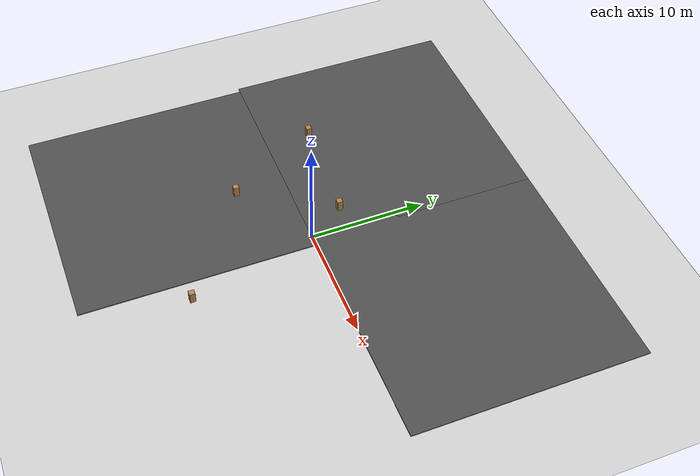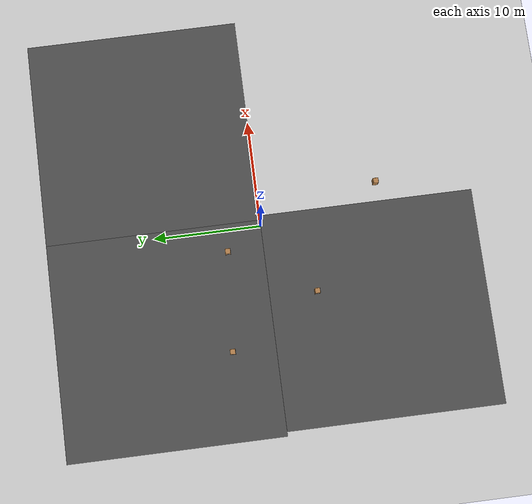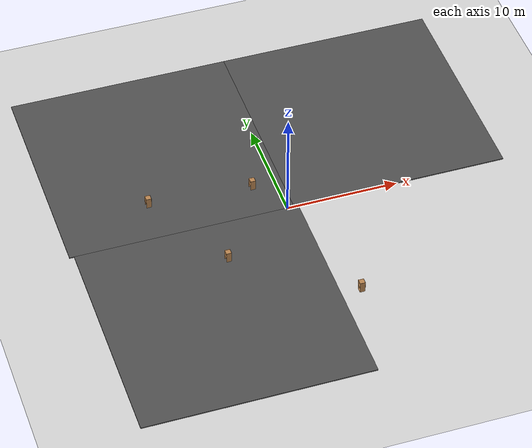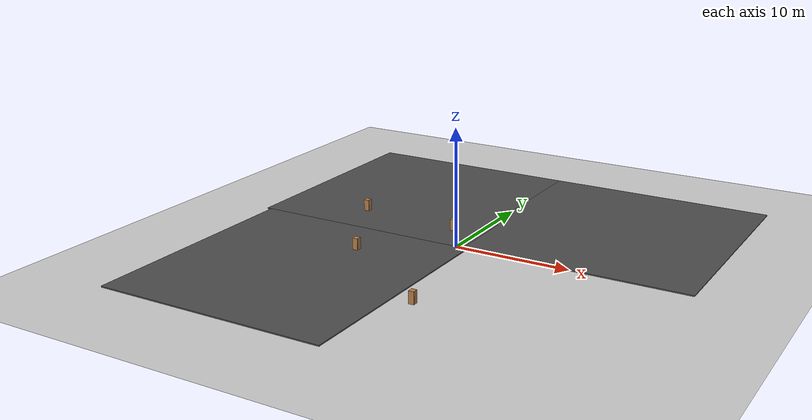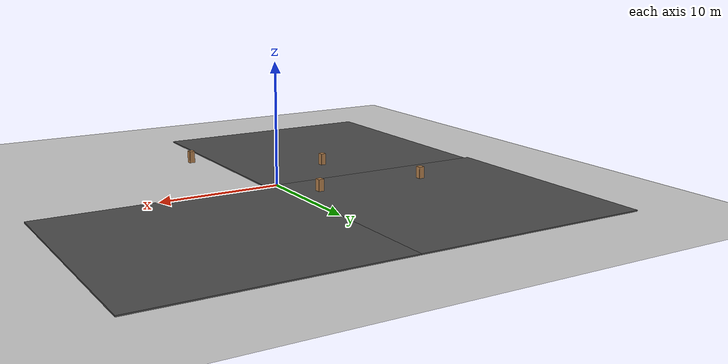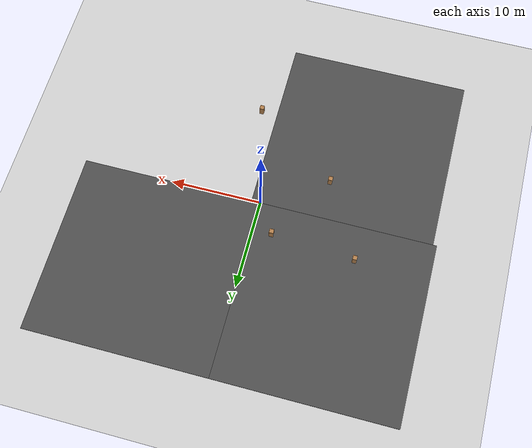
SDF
<sdf version="1.7">
 <world name="default">
  <model name="ground_plane">
   <static>1</static>
   <link name="link">
    <collision name="collision">
     <geometry><plane><normal>0 0 1</normal><size>100 100</size></plane></geometry>
     <surface>
      <contact><collide_bitmask>65535</collide_bitmask></contact>
      <friction><ode><mu>100</mu><mu2>50</mu2></ode></friction>
     </surface>
    </collision>
    <visual name="visual">
     <cast_shadows>0</cast_shadows>
     <geometry><plane><normal>0 0 1</normal><size>100 100</size></plane></geometry>
     <material>
      <script><uri>file://media/materials/scripts/gazebo.material</uri><name>Gazebo/Grey</name></script>
     </material>
    </visual>
   </link>
  </model>
  <model name="asphalt_plane">
   <static>1</static>
   <link name="link">
    <collision name="collision"><geometry><box><size>20 20 0.1</size></box></geometry></collision>
    <visual name="visual">
     <cast_shadows>0</cast_shadows>
     <geometry><box><size>20 20 0.1</size></box></geometry>
     <material>
      <script>
       <uri>model://asphalt_plane/materials/scripts</uri>
       <uri>model://asphalt_plane/materials/textures</uri>
       <name>vrc/asphalt</name>
      </script>
     </material>
    </visual>
   </link>
   <pose>10 10 0 0 -0 0</pose>
  </model>
  <model name="asphalt_plane_0">
   <static>1</static>
   <link name="link">
    <collision name="collision"><geometry><box><size>20 20 0.1</size></box></geometry></collision>
    <visual name="visual">
     <cast_shadows>0</cast_shadows>
     <geometry><box><size>20 20 0.1</size></box></geometry>
     <material>
      <script>
       <uri>model://asphalt_plane/materials/scripts</uri>
       <uri>model://asphalt_plane/materials/textures</uri>
       <name>vrc/asphalt</name>
      </script>
     </material>
    </visual>
   </link>
   <pose>-9.40687 10 0 0 -0 0</pose>
  </model>
  <model name="asphalt_plane_1_clone">
   <static>1</static>
   <link name="link">
    <collision name="collision"><geometry><box><size>20 20 0.1</size></box></geometry></collision>
    <visual name="visual">
     <cast_shadows>0</cast_shadows>
     <geometry><box><size>20 20 0.1</size></box></geometry>
     <material>
      <script>
       <uri>model://asphalt_plane/materials/scripts</uri>
       <uri>model://asphalt_plane/materials/textures</uri>
       <name>vrc/asphalt</name>
      </script>
     </material>
    </visual>
   </link>
   <pose>-9 -10 0 0 -0 0</pose>
  </model>
  <model name="cabinet_clone_1">
   <static>1</static>
   <link name="cabinet_bottom_plate">
    <inertial>
     <pose>0 0 -1 0 -0 0</pose>
     <inertia><ixx>2.05</ixx><ixy>0</ixy><ixz>0</ixz><iyy>2.05</iyy><iyz>0</iyz><izz>2.05</izz></inertia>
     <mass>25</mass>
    </inertial>
    <collision name="cabinet_bottom_plate_geom">
     <pose>0 0 0.01 0 -0 0</pose>
     <geometry><box><size>0.45 0.45 0.02</size></box></geometry>
    </collision>
    <visual name="cabinet_bottom_plate_geom_visual">
     <pose>0 0 0.01 0 -0 0</pose>
     <geometry><box><size>0.45 0.45 0.02</size></box></geometry>
     <material>
      <script><uri>file://media/materials/scripts/gazebo.material</uri><name>Gazebo/Wood</name></script>
     </material>
    </visual>
    <collision name="cabinet_bottom_plate_geom_cabinet_back_plate">
     <pose>0.235 0 0.51 0 -0 0</pose>
     <geometry><box><size>0.02 0.45 1.02</size></box></geometry>
    </collision>
    <visual name="cabinet_bottom_plate_geom_cabinet_back_plate_visual">
     <pose>0.235 0 0.51 0 -0 0</pose>
     <geometry><box><size>0.02 0.45 1.02</size></box></geometry>
     <material>
      <script><uri>file://media/materials/scripts/gazebo.material</uri><name>Gazebo/Wood</name></script>
     </material>
    </visual>
    <collision name="cabinet_bottom_plate_geom_cabinet_left_plate">
     <pose>0 0.235 0.51 0 -0 0</pose>
     <geometry><box><size>0.45 0.02 1.02</size></box></geometry>
    </collision>
    <visual name="cabinet_bottom_plate_geom_cabinet_left_plate_visual">
     <pose>0 0.235 0.51 0 -0 0</pose>
     <geometry><box><size>0.45 0.02 1.02</size></box></geometry>
     <material>
      <script><uri>file://media/materials/scripts/gazebo.material</uri><name>Gazebo/Wood</name></script>
     </material>
    </visual>
    <collision name="cabinet_bottom_plate_geom_cabinet_middle_plate">
     <pose>0 0 0.51 0 -0 0</pose>
     <geometry><box><size>0.45 0.45 0.02</size></box></geometry>
    </collision>
    <visual name="cabinet_bottom_plate_geom_cabinet_middle_plate_visual">
     <pose>0 0 0.51 0 -0 0</pose>
     <geometry><box><size>0.45 0.45 0.02</size></box></geometry>
     <material>
      <script><uri>file://media/materials/scripts/gazebo.material</uri><name>Gazebo/Wood</name></script>
     </material>
    </visual>
    <collision name="cabinet_bottom_plate_geom_cabinet_right_plate">
     <pose>0 -0.235 0.51 0 -0 0</pose>
     <geometry><box><size>0.45 0.02 1.02</size></box></geometry>
    </collision>
    <visual name="cabinet_bottom_plate_geom_cabinet_right_plate_visual">
     <pose>0 -0.235 0.51 0 -0 0</pose>
     <geometry><box><size>0.45 0.02 1.02</size></box></geometry>
     <material>
      <script><uri>file://media/materials/scripts/gazebo.material</uri><name>Gazebo/Wood</name></script>
     </material>
    </visual>
    <collision name="cabinet_bottom_plate_geom_cabinet_top_plate">
     <pose>0 0 1.01 0 -0 0</pose>
     <geometry><box><size>0.45 0.45 0.02</size></box></geometry>
    </collision>
    <visual name="cabinet_bottom_plate_geom_cabinet_top_plate_visual">
     <pose>0 0 1.01 0 -0 0</pose>
     <geometry><box><size>0.45 0.45 0.02</size></box></geometry>
     <material>
      <script><uri>file://media/materials/scripts/gazebo.material</uri><name>Gazebo/Wood</name></script>
     </material>
    </visual>
   </link>
   <pose>2.76242 -11.1397 0 0 -0 0</pose>
  </model>
  <model name="cabinet_clone_2">
   <static>1</static>
   <link name="cabinet_bottom_plate">
    <inertial>
     <pose>0 0 -1 0 -0 0</pose>
     <inertia><ixx>2.05</ixx><ixy>0</ixy><ixz>0</ixz><iyy>2.05</iyy><iyz>0</iyz><izz>2.05</izz></inertia>
     <mass>25</mass>
    </inertial>
    <collision name="cabinet_bottom_plate_geom">
     <pose>0 0 0.01 0 -0 0</pose>
     <geometry><box><size>0.45 0.45 0.02</size></box></geometry>
    </collision>
    <visual name="cabinet_bottom_plate_geom_visual">
     <pose>0 0 0.01 0 -0 0</pose>
     <geometry><box><size>0.45 0.45 0.02</size></box></geometry>
     <material>
      <script><uri>file://media/materials/scripts/gazebo.material</uri><name>Gazebo/Wood</name></script>
     </material>
    </visual>
    <collision name="cabinet_bottom_plate_geom_cabinet_back_plate">
     <pose>0.235 0 0.51 0 -0 0</pose>
     <geometry><box><size>0.02 0.45 1.02</size></box></geometry>
    </collision>
    <visual name="cabinet_bottom_plate_geom_cabinet_back_plate_visual">
     <pose>0.235 0 0.51 0 -0 0</pose>
     <geometry><box><size>0.02 0.45 1.02</size></box></geometry>
     <material>
      <script><uri>file://media/materials/scripts/gazebo.material</uri><name>Gazebo/Wood</name></script>
     </material>
    </visual>
    <collision name="cabinet_bottom_plate_geom_cabinet_left_plate">
     <pose>0 0.235 0.51 0 -0 0</pose>
     <geometry><box><size>0.45 0.02 1.02</size></box></geometry>
    </collision>
    <visual name="cabinet_bottom_plate_geom_cabinet_left_plate_visual">
     <pose>0 0.235 0.51 0 -0 0</pose>
     <geometry><box><size>0.45 0.02 1.02</size></box></geometry>
     <material>
      <script><uri>file://media/materials/scripts/gazebo.material</uri><name>Gazebo/Wood</name></script>
     </material>
    </visual>
    <collision name="cabinet_bottom_plate_geom_cabinet_middle_plate">
     <pose>0 0 0.51 0 -0 0</pose>
     <geometry><box><size>0.45 0.45 0.02</size></box></geometry>
    </collision>
    <visual name="cabinet_bottom_plate_geom_cabinet_middle_plate_visual">
     <pose>0 0 0.51 0 -0 0</pose>
     <geometry><box><size>0.45 0.45 0.02</size></box></geometry>
     <material>
      <script><uri>file://media/materials/scripts/gazebo.material</uri><name>Gazebo/Wood</name></script>
     </material>
    </visual>
    <collision name="cabinet_bottom_plate_geom_cabinet_right_plate">
     <pose>0 -0.235 0.51 0 -0 0</pose>
     <geometry><box><size>0.45 0.02 1.02</size></box></geometry>
    </collision>
    <visual name="cabinet_bottom_plate_geom_cabinet_right_plate_visual">
     <pose>0 -0.235 0.51 0 -0 0</pose>
     <geometry><box><size>0.45 0.02 1.02</size></box></geometry>
     <material>
      <script><uri>file://media/materials/scripts/gazebo.material</uri><name>Gazebo/Wood</name></script>
     </material>
    </visual>
    <collision name="cabinet_bottom_plate_geom_cabinet_top_plate">
     <pose>0 0 1.01 0 -0 0</pose>
     <geometry><box><size>0.45 0.45 0.02</size></box></geometry>
    </collision>
    <visual name="cabinet_bottom_plate_geom_cabinet_top_plate_visual">
     <pose>0 0 1.01 0 -0 0</pose>
     <geometry><box><size>0.45 0.45 0.02</size></box></geometry>
     <material>
      <script><uri>file://media/materials/scripts/gazebo.material</uri><name>Gazebo/Wood</name></script>
     </material>
    </visual>
   </link>
   <pose>-11.3 3.97723 0 0 -0 0</pose>
  </model>
  <model name="cabinet_clone_3">
   <static>1</static>
   <link name="cabinet_bottom_plate">
    <inertial>
     <pose>0 0 -1 0 -0 0</pose>
     <inertia><ixx>2.05</ixx><ixy>0</ixy><ixz>0</ixz><iyy>2.05</iyy><iyz>0</iyz><izz>2.05</izz></inertia>
     <mass>25</mass>
    </inertial>
    <collision name="cabinet_bottom_plate_geom">
     <pose>0 0 0.01 0 -0 0</pose>
     <geometry><box><size>0.45 0.45 0.02</size></box></geometry>
    </collision>
    <visual name="cabinet_bottom_plate_geom_visual">
     <pose>0 0 0.01 0 -0 0</pose>
     <geometry><box><size>0.45 0.45 0.02</size></box></geometry>
     <material>
      <script><uri>file://media/materials/scripts/gazebo.material</uri><name>Gazebo/Wood</name></script>
     </material>
    </visual>
    <collision name="cabinet_bottom_plate_geom_cabinet_back_plate">
     <pose>0.235 0 0.51 0 -0 0</pose>
     <geometry><box><size>0.02 0.45 1.02</size></box></geometry>
    </collision>
    <visual name="cabinet_bottom_plate_geom_cabinet_back_plate_visual">
     <pose>0.235 0 0.51 0 -0 0</pose>
     <geometry><box><size>0.02 0.45 1.02</size></box></geometry>
     <material>
      <script><uri>file://media/materials/scripts/gazebo.material</uri><name>Gazebo/Wood</name></script>
     </material>
    </visual>
    <collision name="cabinet_bottom_plate_geom_cabinet_left_plate">
     <pose>0 0.235 0.51 0 -0 0</pose>
     <geometry><box><size>0.45 0.02 1.02</size></box></geometry>
    </collision>
    <visual name="cabinet_bottom_plate_geom_cabinet_left_plate_visual">
     <pose>0 0.235 0.51 0 -0 0</pose>
     <geometry><box><size>0.45 0.02 1.02</size></box></geometry>
     <material>
      <script><uri>file://media/materials/scripts/gazebo.material</uri><name>Gazebo/Wood</name></script>
     </material>
    </visual>
    <collision name="cabinet_bottom_plate_geom_cabinet_middle_plate">
     <pose>0 0 0.51 0 -0 0</pose>
     <geometry><box><size>0.45 0.45 0.02</size></box></geometry>
    </collision>
    <visual name="cabinet_bottom_plate_geom_cabinet_middle_plate_visual">
     <pose>0 0 0.51 0 -0 0</pose>
     <geometry><box><size>0.45 0.45 0.02</size></box></geometry>
     <material>
      <script><uri>file://media/materials/scripts/gazebo.material</uri><name>Gazebo/Wood</name></script>
     </material>
    </visual>
    <collision name="cabinet_bottom_plate_geom_cabinet_right_plate">
     <pose>0 -0.235 0.51 0 -0 0</pose>
     <geometry><box><size>0.45 0.02 1.02</size></box></geometry>
    </collision>
    <visual name="cabinet_bottom_plate_geom_cabinet_right_plate_visual">
     <pose>0 -0.235 0.51 0 -0 0</pose>
     <geometry><box><size>0.45 0.02 1.02</size></box></geometry>
     <material>
      <script><uri>file://media/materials/scripts/gazebo.material</uri><name>Gazebo/Wood</name></script>
     </material>
    </visual>
    <collision name="cabinet_bottom_plate_geom_cabinet_top_plate">
     <pose>0 0 1.01 0 -0 0</pose>
     <geometry><box><size>0.45 0.45 0.02</size></box></geometry>
    </collision>
    <visual name="cabinet_bottom_plate_geom_cabinet_top_plate_visual">
     <pose>0 0 1.01 0 -0 0</pose>
     <geometry><box><size>0.45 0.45 0.02</size></box></geometry>
     <material>
      <script><uri>file://media/materials/scripts/gazebo.material</uri><name>Gazebo/Wood</name></script>
     </material>
    </visual>
   </link>
   <pose>-6.74883 -4.39089 0 0 -0 0</pose>
  </model>
  <model name="cabinet_clone_5">
   <static>1</static>
   <link name="cabinet_bottom_plate">
    <inertial>
     <pose>0 0 -1 0 -0 0</pose>
     <inertia><ixx>2.05</ixx><ixy>0</ixy><ixz>0</ixz><iyy>2.05</iyy><iyz>0</iyz><izz>2.05</izz></inertia>
     <mass>25</mass>
    </inertial>
    <collision name="cabinet_bottom_plate_geom">
     <pose>0 0 0.01 0 -0 0</pose>
     <geometry><box><size>0.45 0.45 0.02</size></box></geometry>
    </collision>
    <visual name="cabinet_bottom_plate_geom_visual">
     <pose>0 0 0.01 0 -0 0</pose>
     <geometry><box><size>0.45 0.45 0.02</size></box></geometry>
     <material>
      <script><uri>file://media/materials/scripts/gazebo.material</uri><name>Gazebo/Wood</name></script>
     </material>
    </visual>
    <collision name="cabinet_bottom_plate_geom_cabinet_back_plate">
     <pose>0.235 0 0.51 0 -0 0</pose>
     <geometry><box><size>0.02 0.45 1.02</size></box></geometry>
    </collision>
    <visual name="cabinet_bottom_plate_geom_cabinet_back_plate_visual">
     <pose>0.235 0 0.51 0 -0 0</pose>
     <geometry><box><size>0.02 0.45 1.02</size></box></geometry>
     <material>
      <script><uri>file://media/materials/scripts/gazebo.material</uri><name>Gazebo/Wood</name></script>
     </material>
    </visual>
    <collision name="cabinet_bottom_plate_geom_cabinet_left_plate">
     <pose>0 0.235 0.51 0 -0 0</pose>
     <geometry><box><size>0.45 0.02 1.02</size></box></geometry>
    </collision>
    <visual name="cabinet_bottom_plate_geom_cabinet_left_plate_visual">
     <pose>0 0.235 0.51 0 -0 0</pose>
     <geometry><box><size>0.45 0.02 1.02</size></box></geometry>
     <material>
      <script><uri>file://media/materials/scripts/gazebo.material</uri><name>Gazebo/Wood</name></script>
     </material>
    </visual>
    <collision name="cabinet_bottom_plate_geom_cabinet_middle_plate">
     <pose>0 0 0.51 0 -0 0</pose>
     <geometry><box><size>0.45 0.45 0.02</size></box></geometry>
    </collision>
    <visual name="cabinet_bottom_plate_geom_cabinet_middle_plate_visual">
     <pose>0 0 0.51 0 -0 0</pose>
     <geometry><box><size>0.45 0.45 0.02</size></box></geometry>
     <material>
      <script><uri>file://media/materials/scripts/gazebo.material</uri><name>Gazebo/Wood</name></script>
     </material>
    </visual>
    <collision name="cabinet_bottom_plate_geom_cabinet_right_plate">
     <pose>0 -0.235 0.51 0 -0 0</pose>
     <geometry><box><size>0.45 0.02 1.02</size></box></geometry>
    </collision>
    <visual name="cabinet_bottom_plate_geom_cabinet_right_plate_visual">
     <pose>0 -0.235 0.51 0 -0 0</pose>
     <geometry><box><size>0.45 0.02 1.02</size></box></geometry>
     <material>
      <script><uri>file://media/materials/scripts/gazebo.material</uri><name>Gazebo/Wood</name></script>
     </material>
    </visual>
    <collision name="cabinet_bottom_plate_geom_cabinet_top_plate">
     <pose>0 0 1.01 0 -0 0</pose>
     <geometry><box><size>0.45 0.45 0.02</size></box></geometry>
    </collision>
    <visual name="cabinet_bottom_plate_geom_cabinet_top_plate_visual">
     <pose>0 0 1.01 0 -0 0</pose>
     <geometry><box><size>0.45 0.45 0.02</size></box></geometry>
     <material>
      <script><uri>file://media/materials/scripts/gazebo.material</uri><name>Gazebo/Wood</name></script>
     </material>
    </visual>
   </link>
   <pose>-2.10819 3.31045 0 0 -0 0</pose>
  </model>
 </world>
</sdf>
